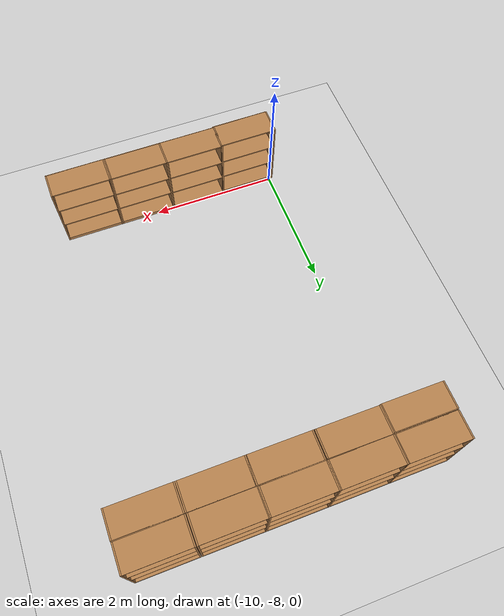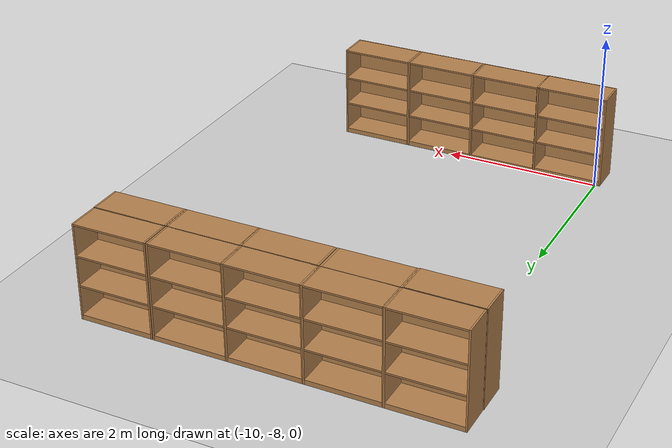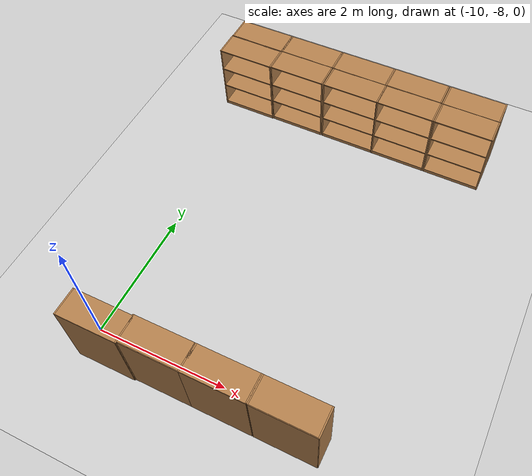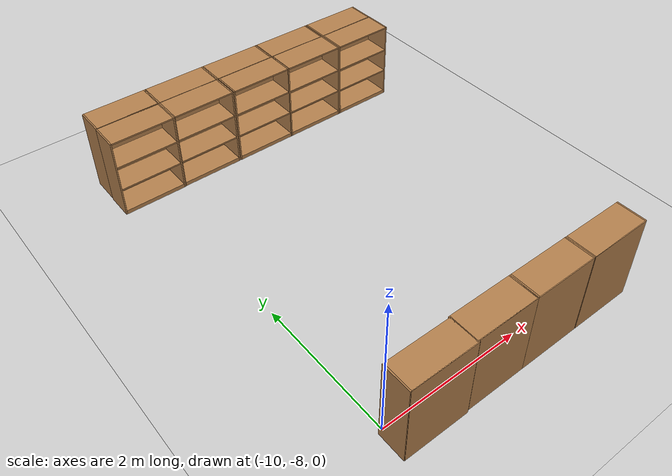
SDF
<sdf version="1.7">
 <world name="default">
  <model name="ground_plane">
   <static>1</static>
   <link name="link">
    <collision name="collision">
     <geometry><plane><normal>0 0 1</normal><size>100 100</size></plane></geometry>
     <surface><friction><ode><mu>100</mu><mu2>50</mu2></ode></friction></surface>
    </collision>
    <visual name="visual">
     <cast_shadows>0</cast_shadows>
     <geometry><plane><normal>0 0 1</normal><size>100 100</size></plane></geometry>
     <material>
      <script><uri>file://media/materials/scripts/gazebo.material</uri><name>Gazebo/Grey</name></script>
     </material>
    </visual>
   </link>
  </model>
  <model name="bookshelf_clone_0_clone_0_clone_clone_clone_clone_clone_1_clone_clone_clone_clone">
   <static>1</static>
   <link name="link">
    <inertial><mass>1</mass></inertial>
    <collision name="back">
     <pose>0 0.005 0.6 0 -0 0</pose>
     <geometry><box><size>0.9 0.01 1.2</size></box></geometry>
    </collision>
    <visual name="visual1">
     <pose>0 0.005 0.6 0 -0 0</pose>
     <geometry><box><size>0.9 0.01 1.2</size></box></geometry>
     <material>
      <script><uri>file://media/materials/scripts/gazebo.material</uri><name>Gazebo/Wood</name></script>
     </material>
    </visual>
    <collision name="left_side">
     <pose>0.45 -0.195 0.6 0 -0 0</pose>
     <geometry><box><size>0.02 0.4 1.2</size></box></geometry>
    </collision>
    <visual name="visual2">
     <pose>0.45 -0.195 0.6 0 -0 0</pose>
     <geometry><box><size>0.02 0.4 1.2</size></box></geometry>
     <material>
      <script><uri>file://media/materials/scripts/gazebo.material</uri><name>Gazebo/Wood</name></script>
     </material>
    </visual>
    <collision name="right_side">
     <pose>-0.45 -0.195 0.6 0 -0 0</pose>
     <geometry><box><size>0.02 0.4 1.2</size></box></geometry>
    </collision>
    <visual name="visual3">
     <pose>-0.45 -0.195 0.6 0 -0 0</pose>
     <geometry><box><size>0.02 0.4 1.2</size></box></geometry>
     <material>
      <script><uri>file://media/materials/scripts/gazebo.material</uri><name>Gazebo/Wood</name></script>
     </material>
    </visual>
    <collision name="bottom">
     <pose>0 -0.195 0.03 0 -0 0</pose>
     <geometry><box><size>0.88 0.4 0.06</size></box></geometry>
    </collision>
    <visual name="visual4">
     <pose>0 -0.195 0.03 0 -0 0</pose>
     <geometry><box><size>0.88 0.4 0.06</size></box></geometry>
     <material>
      <script><uri>file://media/materials/scripts/gazebo.material</uri><name>Gazebo/Wood</name></script>
     </material>
    </visual>
    <collision name="top">
     <pose>0 -0.195 1.19 0 -0 0</pose>
     <geometry><box><size>0.88 0.4 0.02</size></box></geometry>
    </collision>
    <visual name="visual5">
     <pose>0 -0.195 1.19 0 -0 0</pose>
     <geometry><box><size>0.88 0.4 0.02</size></box></geometry>
     <material>
      <script><uri>file://media/materials/scripts/gazebo.material</uri><name>Gazebo/Wood</name></script>
     </material>
    </visual>
    <collision name="low_shelf">
     <pose>0 -0.195 0.43 0 -0 0</pose>
     <geometry><box><size>0.88 0.4 0.02</size></box></geometry>
    </collision>
    <visual name="visual6">
     <pose>0 -0.195 0.43 0 -0 0</pose>
     <geometry><box><size>0.88 0.4 0.02</size></box></geometry>
     <material>
      <script><uri>file://media/materials/scripts/gazebo.material</uri><name>Gazebo/Wood</name></script>
     </material>
    </visual>
    <collision name="high_shelf">
     <pose>0 -0.195 0.8 0 -0 0</pose>
     <geometry><box><size>0.88 0.4 0.02</size></box></geometry>
    </collision>
    <visual name="visual7">
     <pose>0 -0.195 0.8 0 -0 0</pose>
     <geometry><box><size>0.88 0.4 0.02</size></box></geometry>
     <material>
      <script><uri>file://media/materials/scripts/gazebo.material</uri><name>Gazebo/Wood</name></script>
     </material>
    </visual>
   </link>
   <pose>-6.41849 -2.94994 0.004614 0 0 -3.14107</pose>
  </model>
  <model name="bookshelf_clone_0_clone_0_clone_clone_clone_clone_clone_1_clone_clone_clone_clone_clone">
   <static>1</static>
   <link name="link">
    <inertial><mass>1</mass></inertial>
    <collision name="back">
     <pose>0 0.005 0.6 0 -0 0</pose>
     <geometry><box><size>0.9 0.01 1.2</size></box></geometry>
    </collision>
    <visual name="visual1">
     <pose>0 0.005 0.6 0 -0 0</pose>
     <geometry><box><size>0.9 0.01 1.2</size></box></geometry>
     <material>
      <script><uri>file://media/materials/scripts/gazebo.material</uri><name>Gazebo/Wood</name></script>
     </material>
    </visual>
    <collision name="left_side">
     <pose>0.45 -0.195 0.6 0 -0 0</pose>
     <geometry><box><size>0.02 0.4 1.2</size></box></geometry>
    </collision>
    <visual name="visual2">
     <pose>0.45 -0.195 0.6 0 -0 0</pose>
     <geometry><box><size>0.02 0.4 1.2</size></box></geometry>
     <material>
      <script><uri>file://media/materials/scripts/gazebo.material</uri><name>Gazebo/Wood</name></script>
     </material>
    </visual>
    <collision name="right_side">
     <pose>-0.45 -0.195 0.6 0 -0 0</pose>
     <geometry><box><size>0.02 0.4 1.2</size></box></geometry>
    </collision>
    <visual name="visual3">
     <pose>-0.45 -0.195 0.6 0 -0 0</pose>
     <geometry><box><size>0.02 0.4 1.2</size></box></geometry>
     <material>
      <script><uri>file://media/materials/scripts/gazebo.material</uri><name>Gazebo/Wood</name></script>
     </material>
    </visual>
    <collision name="bottom">
     <pose>0 -0.195 0.03 0 -0 0</pose>
     <geometry><box><size>0.88 0.4 0.06</size></box></geometry>
    </collision>
    <visual name="visual4">
     <pose>0 -0.195 0.03 0 -0 0</pose>
     <geometry><box><size>0.88 0.4 0.06</size></box></geometry>
     <material>
      <script><uri>file://media/materials/scripts/gazebo.material</uri><name>Gazebo/Wood</name></script>
     </material>
    </visual>
    <collision name="top">
     <pose>0 -0.195 1.19 0 -0 0</pose>
     <geometry><box><size>0.88 0.4 0.02</size></box></geometry>
    </collision>
    <visual name="visual5">
     <pose>0 -0.195 1.19 0 -0 0</pose>
     <geometry><box><size>0.88 0.4 0.02</size></box></geometry>
     <material>
      <script><uri>file://media/materials/scripts/gazebo.material</uri><name>Gazebo/Wood</name></script>
     </material>
    </visual>
    <collision name="low_shelf">
     <pose>0 -0.195 0.43 0 -0 0</pose>
     <geometry><box><size>0.88 0.4 0.02</size></box></geometry>
    </collision>
    <visual name="visual6">
     <pose>0 -0.195 0.43 0 -0 0</pose>
     <geometry><box><size>0.88 0.4 0.02</size></box></geometry>
     <material>
      <script><uri>file://media/materials/scripts/gazebo.material</uri><name>Gazebo/Wood</name></script>
     </material>
    </visual>
    <collision name="high_shelf">
     <pose>0 -0.195 0.8 0 -0 0</pose>
     <geometry><box><size>0.88 0.4 0.02</size></box></geometry>
    </collision>
    <visual name="visual7">
     <pose>0 -0.195 0.8 0 -0 0</pose>
     <geometry><box><size>0.88 0.4 0.02</size></box></geometry>
     <material>
      <script><uri>file://media/materials/scripts/gazebo.material</uri><name>Gazebo/Wood</name></script>
     </material>
    </visual>
   </link>
   <pose>-7.34723 -2.94994 0.004614 0 0 -3.14107</pose>
  </model>
  <model name="bookshelf_clone_0_clone_0_clone_clone_clone_clone_clone_1_clone_clone_clone_clone_clone_clone">
   <static>1</static>
   <link name="link">
    <inertial><mass>1</mass></inertial>
    <collision name="back">
     <pose>0 0.005 0.6 0 -0 0</pose>
     <geometry><box><size>0.9 0.01 1.2</size></box></geometry>
    </collision>
    <visual name="visual1">
     <pose>0 0.005 0.6 0 -0 0</pose>
     <geometry><box><size>0.9 0.01 1.2</size></box></geometry>
     <material>
      <script><uri>file://media/materials/scripts/gazebo.material</uri><name>Gazebo/Wood</name></script>
     </material>
    </visual>
    <collision name="left_side">
     <pose>0.45 -0.195 0.6 0 -0 0</pose>
     <geometry><box><size>0.02 0.4 1.2</size></box></geometry>
    </collision>
    <visual name="visual2">
     <pose>0.45 -0.195 0.6 0 -0 0</pose>
     <geometry><box><size>0.02 0.4 1.2</size></box></geometry>
     <material>
      <script><uri>file://media/materials/scripts/gazebo.material</uri><name>Gazebo/Wood</name></script>
     </material>
    </visual>
    <collision name="right_side">
     <pose>-0.45 -0.195 0.6 0 -0 0</pose>
     <geometry><box><size>0.02 0.4 1.2</size></box></geometry>
    </collision>
    <visual name="visual3">
     <pose>-0.45 -0.195 0.6 0 -0 0</pose>
     <geometry><box><size>0.02 0.4 1.2</size></box></geometry>
     <material>
      <script><uri>file://media/materials/scripts/gazebo.material</uri><name>Gazebo/Wood</name></script>
     </material>
    </visual>
    <collision name="bottom">
     <pose>0 -0.195 0.03 0 -0 0</pose>
     <geometry><box><size>0.88 0.4 0.06</size></box></geometry>
    </collision>
    <visual name="visual4">
     <pose>0 -0.195 0.03 0 -0 0</pose>
     <geometry><box><size>0.88 0.4 0.06</size></box></geometry>
     <material>
      <script><uri>file://media/materials/scripts/gazebo.material</uri><name>Gazebo/Wood</name></script>
     </material>
    </visual>
    <collision name="top">
     <pose>0 -0.195 1.19 0 -0 0</pose>
     <geometry><box><size>0.88 0.4 0.02</size></box></geometry>
    </collision>
    <visual name="visual5">
     <pose>0 -0.195 1.19 0 -0 0</pose>
     <geometry><box><size>0.88 0.4 0.02</size></box></geometry>
     <material>
      <script><uri>file://media/materials/scripts/gazebo.material</uri><name>Gazebo/Wood</name></script>
     </material>
    </visual>
    <collision name="low_shelf">
     <pose>0 -0.195 0.43 0 -0 0</pose>
     <geometry><box><size>0.88 0.4 0.02</size></box></geometry>
    </collision>
    <visual name="visual6">
     <pose>0 -0.195 0.43 0 -0 0</pose>
     <geometry><box><size>0.88 0.4 0.02</size></box></geometry>
     <material>
      <script><uri>file://media/materials/scripts/gazebo.material</uri><name>Gazebo/Wood</name></script>
     </material>
    </visual>
    <collision name="high_shelf">
     <pose>0 -0.195 0.8 0 -0 0</pose>
     <geometry><box><size>0.88 0.4 0.02</size></box></geometry>
    </collision>
    <visual name="visual7">
     <pose>0 -0.195 0.8 0 -0 0</pose>
     <geometry><box><size>0.88 0.4 0.02</size></box></geometry>
     <material>
      <script><uri>file://media/materials/scripts/gazebo.material</uri><name>Gazebo/Wood</name></script>
     </material>
    </visual>
   </link>
   <pose>-8.26036 -2.94994 0.004614 0 0 -3.14107</pose>
  </model>
  <model name="bookshelf_clone_0_clone_0_clone_clone_clone_clone_clone_1_clone_clone_clone_clone_clone_clone_clone">
   <static>1</static>
   <link name="link">
    <inertial><mass>1</mass></inertial>
    <collision name="back">
     <pose>0 0.005 0.6 0 -0 0</pose>
     <geometry><box><size>0.9 0.01 1.2</size></box></geometry>
    </collision>
    <visual name="visual1">
     <pose>0 0.005 0.6 0 -0 0</pose>
     <geometry><box><size>0.9 0.01 1.2</size></box></geometry>
     <material>
      <script><uri>file://media/materials/scripts/gazebo.material</uri><name>Gazebo/Wood</name></script>
     </material>
    </visual>
    <collision name="left_side">
     <pose>0.45 -0.195 0.6 0 -0 0</pose>
     <geometry><box><size>0.02 0.4 1.2</size></box></geometry>
    </collision>
    <visual name="visual2">
     <pose>0.45 -0.195 0.6 0 -0 0</pose>
     <geometry><box><size>0.02 0.4 1.2</size></box></geometry>
     <material>
      <script><uri>file://media/materials/scripts/gazebo.material</uri><name>Gazebo/Wood</name></script>
     </material>
    </visual>
    <collision name="right_side">
     <pose>-0.45 -0.195 0.6 0 -0 0</pose>
     <geometry><box><size>0.02 0.4 1.2</size></box></geometry>
    </collision>
    <visual name="visual3">
     <pose>-0.45 -0.195 0.6 0 -0 0</pose>
     <geometry><box><size>0.02 0.4 1.2</size></box></geometry>
     <material>
      <script><uri>file://media/materials/scripts/gazebo.material</uri><name>Gazebo/Wood</name></script>
     </material>
    </visual>
    <collision name="bottom">
     <pose>0 -0.195 0.03 0 -0 0</pose>
     <geometry><box><size>0.88 0.4 0.06</size></box></geometry>
    </collision>
    <visual name="visual4">
     <pose>0 -0.195 0.03 0 -0 0</pose>
     <geometry><box><size>0.88 0.4 0.06</size></box></geometry>
     <material>
      <script><uri>file://media/materials/scripts/gazebo.material</uri><name>Gazebo/Wood</name></script>
     </material>
    </visual>
    <collision name="top">
     <pose>0 -0.195 1.19 0 -0 0</pose>
     <geometry><box><size>0.88 0.4 0.02</size></box></geometry>
    </collision>
    <visual name="visual5">
     <pose>0 -0.195 1.19 0 -0 0</pose>
     <geometry><box><size>0.88 0.4 0.02</size></box></geometry>
     <material>
      <script><uri>file://media/materials/scripts/gazebo.material</uri><name>Gazebo/Wood</name></script>
     </material>
    </visual>
    <collision name="low_shelf">
     <pose>0 -0.195 0.43 0 -0 0</pose>
     <geometry><box><size>0.88 0.4 0.02</size></box></geometry>
    </collision>
    <visual name="visual6">
     <pose>0 -0.195 0.43 0 -0 0</pose>
     <geometry><box><size>0.88 0.4 0.02</size></box></geometry>
     <material>
      <script><uri>file://media/materials/scripts/gazebo.material</uri><name>Gazebo/Wood</name></script>
     </material>
    </visual>
    <collision name="high_shelf">
     <pose>0 -0.195 0.8 0 -0 0</pose>
     <geometry><box><size>0.88 0.4 0.02</size></box></geometry>
    </collision>
    <visual name="visual7">
     <pose>0 -0.195 0.8 0 -0 0</pose>
     <geometry><box><size>0.88 0.4 0.02</size></box></geometry>
     <material>
      <script><uri>file://media/materials/scripts/gazebo.material</uri><name>Gazebo/Wood</name></script>
     </material>
    </visual>
   </link>
   <pose>-9.17466 -2.94994 0.004614 0 0 -3.14107</pose>
  </model>
  <model name="bookshelf_clone_clone_clone_0">
   <static>1</static>
   <link name="link">
    <inertial><mass>1</mass></inertial>
    <collision name="back">
     <pose>0 0.005 0.6 0 -0 0</pose>
     <geometry><box><size>0.9 0.01 1.2</size></box></geometry>
    </collision>
    <visual name="visual1">
     <pose>0 0.005 0.6 0 -0 0</pose>
     <geometry><box><size>0.9 0.01 1.2</size></box></geometry>
     <material>
      <script><uri>file://media/materials/scripts/gazebo.material</uri><name>Gazebo/Wood</name></script>
     </material>
    </visual>
    <collision name="left_side">
     <pose>0.45 -0.195 0.6 0 -0 0</pose>
     <geometry><box><size>0.02 0.4 1.2</size></box></geometry>
    </collision>
    <visual name="visual2">
     <pose>0.45 -0.195 0.6 0 -0 0</pose>
     <geometry><box><size>0.02 0.4 1.2</size></box></geometry>
     <material>
      <script><uri>file://media/materials/scripts/gazebo.material</uri><name>Gazebo/Wood</name></script>
     </material>
    </visual>
    <collision name="right_side">
     <pose>-0.45 -0.195 0.6 0 -0 0</pose>
     <geometry><box><size>0.02 0.4 1.2</size></box></geometry>
    </collision>
    <visual name="visual3">
     <pose>-0.45 -0.195 0.6 0 -0 0</pose>
     <geometry><box><size>0.02 0.4 1.2</size></box></geometry>
     <material>
      <script><uri>file://media/materials/scripts/gazebo.material</uri><name>Gazebo/Wood</name></script>
     </material>
    </visual>
    <collision name="bottom">
     <pose>0 -0.195 0.03 0 -0 0</pose>
     <geometry><box><size>0.88 0.4 0.06</size></box></geometry>
    </collision>
    <visual name="visual4">
     <pose>0 -0.195 0.03 0 -0 0</pose>
     <geometry><box><size>0.88 0.4 0.06</size></box></geometry>
     <material>
      <script><uri>file://media/materials/scripts/gazebo.material</uri><name>Gazebo/Wood</name></script>
     </material>
    </visual>
    <collision name="top">
     <pose>0 -0.195 1.19 0 -0 0</pose>
     <geometry><box><size>0.88 0.4 0.02</size></box></geometry>
    </collision>
    <visual name="visual5">
     <pose>0 -0.195 1.19 0 -0 0</pose>
     <geometry><box><size>0.88 0.4 0.02</size></box></geometry>
     <material>
      <script><uri>file://media/materials/scripts/gazebo.material</uri><name>Gazebo/Wood</name></script>
     </material>
    </visual>
    <collision name="low_shelf">
     <pose>0 -0.195 0.43 0 -0 0</pose>
     <geometry><box><size>0.88 0.4 0.02</size></box></geometry>
    </collision>
    <visual name="visual6">
     <pose>0 -0.195 0.43 0 -0 0</pose>
     <geometry><box><size>0.88 0.4 0.02</size></box></geometry>
     <material>
      <script><uri>file://media/materials/scripts/gazebo.material</uri><name>Gazebo/Wood</name></script>
     </material>
    </visual>
    <collision name="high_shelf">
     <pose>0 -0.195 0.8 0 -0 0</pose>
     <geometry><box><size>0.88 0.4 0.02</size></box></geometry>
    </collision>
    <visual name="visual7">
     <pose>0 -0.195 0.8 0 -0 0</pose>
     <geometry><box><size>0.88 0.4 0.02</size></box></geometry>
     <material>
      <script><uri>file://media/materials/scripts/gazebo.material</uri><name>Gazebo/Wood</name></script>
     </material>
    </visual>
   </link>
   <pose>-6.9119 -8.39134 0 0 0 -3.14107</pose>
  </model>
  <model name="bookshelf_clone_clone_clone_1">
   <static>1</static>
   <link name="link">
    <inertial><mass>1</mass></inertial>
    <collision name="back">
     <pose>0 0.005 0.6 0 -0 0</pose>
     <geometry><box><size>0.9 0.01 1.2</size></box></geometry>
    </collision>
    <visual name="visual1">
     <pose>0 0.005 0.6 0 -0 0</pose>
     <geometry><box><size>0.9 0.01 1.2</size></box></geometry>
     <material>
      <script><uri>file://media/materials/scripts/gazebo.material</uri><name>Gazebo/Wood</name></script>
     </material>
    </visual>
    <collision name="left_side">
     <pose>0.45 -0.195 0.6 0 -0 0</pose>
     <geometry><box><size>0.02 0.4 1.2</size></box></geometry>
    </collision>
    <visual name="visual2">
     <pose>0.45 -0.195 0.6 0 -0 0</pose>
     <geometry><box><size>0.02 0.4 1.2</size></box></geometry>
     <material>
      <script><uri>file://media/materials/scripts/gazebo.material</uri><name>Gazebo/Wood</name></script>
     </material>
    </visual>
    <collision name="right_side">
     <pose>-0.45 -0.195 0.6 0 -0 0</pose>
     <geometry><box><size>0.02 0.4 1.2</size></box></geometry>
    </collision>
    <visual name="visual3">
     <pose>-0.45 -0.195 0.6 0 -0 0</pose>
     <geometry><box><size>0.02 0.4 1.2</size></box></geometry>
     <material>
      <script><uri>file://media/materials/scripts/gazebo.material</uri><name>Gazebo/Wood</name></script>
     </material>
    </visual>
    <collision name="bottom">
     <pose>0 -0.195 0.03 0 -0 0</pose>
     <geometry><box><size>0.88 0.4 0.06</size></box></geometry>
    </collision>
    <visual name="visual4">
     <pose>0 -0.195 0.03 0 -0 0</pose>
     <geometry><box><size>0.88 0.4 0.06</size></box></geometry>
     <material>
      <script><uri>file://media/materials/scripts/gazebo.material</uri><name>Gazebo/Wood</name></script>
     </material>
    </visual>
    <collision name="top">
     <pose>0 -0.195 1.19 0 -0 0</pose>
     <geometry><box><size>0.88 0.4 0.02</size></box></geometry>
    </collision>
    <visual name="visual5">
     <pose>0 -0.195 1.19 0 -0 0</pose>
     <geometry><box><size>0.88 0.4 0.02</size></box></geometry>
     <material>
      <script><uri>file://media/materials/scripts/gazebo.material</uri><name>Gazebo/Wood</name></script>
     </material>
    </visual>
    <collision name="low_shelf">
     <pose>0 -0.195 0.43 0 -0 0</pose>
     <geometry><box><size>0.88 0.4 0.02</size></box></geometry>
    </collision>
    <visual name="visual6">
     <pose>0 -0.195 0.43 0 -0 0</pose>
     <geometry><box><size>0.88 0.4 0.02</size></box></geometry>
     <material>
      <script><uri>file://media/materials/scripts/gazebo.material</uri><name>Gazebo/Wood</name></script>
     </material>
    </visual>
    <collision name="high_shelf">
     <pose>0 -0.195 0.8 0 -0 0</pose>
     <geometry><box><size>0.88 0.4 0.02</size></box></geometry>
    </collision>
    <visual name="visual7">
     <pose>0 -0.195 0.8 0 -0 0</pose>
     <geometry><box><size>0.88 0.4 0.02</size></box></geometry>
     <material>
      <script><uri>file://media/materials/scripts/gazebo.material</uri><name>Gazebo/Wood</name></script>
     </material>
    </visual>
   </link>
   <pose>-7.82824 -8.39134 0 0 0 -3.14107</pose>
  </model>
  <model name="bookshelf_clone_clone_clone_2">
   <static>1</static>
   <link name="link">
    <inertial><mass>1</mass></inertial>
    <collision name="back">
     <pose>0 0.005 0.6 0 -0 0</pose>
     <geometry><box><size>0.9 0.01 1.2</size></box></geometry>
    </collision>
    <visual name="visual1">
     <pose>0 0.005 0.6 0 -0 0</pose>
     <geometry><box><size>0.9 0.01 1.2</size></box></geometry>
     <material>
      <script><uri>file://media/materials/scripts/gazebo.material</uri><name>Gazebo/Wood</name></script>
     </material>
    </visual>
    <collision name="left_side">
     <pose>0.45 -0.195 0.6 0 -0 0</pose>
     <geometry><box><size>0.02 0.4 1.2</size></box></geometry>
    </collision>
    <visual name="visual2">
     <pose>0.45 -0.195 0.6 0 -0 0</pose>
     <geometry><box><size>0.02 0.4 1.2</size></box></geometry>
     <material>
      <script><uri>file://media/materials/scripts/gazebo.material</uri><name>Gazebo/Wood</name></script>
     </material>
    </visual>
    <collision name="right_side">
     <pose>-0.45 -0.195 0.6 0 -0 0</pose>
     <geometry><box><size>0.02 0.4 1.2</size></box></geometry>
    </collision>
    <visual name="visual3">
     <pose>-0.45 -0.195 0.6 0 -0 0</pose>
     <geometry><box><size>0.02 0.4 1.2</size></box></geometry>
     <material>
      <script><uri>file://media/materials/scripts/gazebo.material</uri><name>Gazebo/Wood</name></script>
     </material>
    </visual>
    <collision name="bottom">
     <pose>0 -0.195 0.03 0 -0 0</pose>
     <geometry><box><size>0.88 0.4 0.06</size></box></geometry>
    </collision>
    <visual name="visual4">
     <pose>0 -0.195 0.03 0 -0 0</pose>
     <geometry><box><size>0.88 0.4 0.06</size></box></geometry>
     <material>
      <script><uri>file://media/materials/scripts/gazebo.material</uri><name>Gazebo/Wood</name></script>
     </material>
    </visual>
    <collision name="top">
     <pose>0 -0.195 1.19 0 -0 0</pose>
     <geometry><box><size>0.88 0.4 0.02</size></box></geometry>
    </collision>
    <visual name="visual5">
     <pose>0 -0.195 1.19 0 -0 0</pose>
     <geometry><box><size>0.88 0.4 0.02</size></box></geometry>
     <material>
      <script><uri>file://media/materials/scripts/gazebo.material</uri><name>Gazebo/Wood</name></script>
     </material>
    </visual>
    <collision name="low_shelf">
     <pose>0 -0.195 0.43 0 -0 0</pose>
     <geometry><box><size>0.88 0.4 0.02</size></box></geometry>
    </collision>
    <visual name="visual6">
     <pose>0 -0.195 0.43 0 -0 0</pose>
     <geometry><box><size>0.88 0.4 0.02</size></box></geometry>
     <material>
      <script><uri>file://media/materials/scripts/gazebo.material</uri><name>Gazebo/Wood</name></script>
     </material>
    </visual>
    <collision name="high_shelf">
     <pose>0 -0.195 0.8 0 -0 0</pose>
     <geometry><box><size>0.88 0.4 0.02</size></box></geometry>
    </collision>
    <visual name="visual7">
     <pose>0 -0.195 0.8 0 -0 0</pose>
     <geometry><box><size>0.88 0.4 0.02</size></box></geometry>
     <material>
      <script><uri>file://media/materials/scripts/gazebo.material</uri><name>Gazebo/Wood</name></script>
     </material>
    </visual>
   </link>
   <pose>-8.71324 -8.39134 0 0 0 -3.14107</pose>
  </model>
  <model name="bookshelf_clone_0_clone_0_clone_clone_clone_clone_clone_1_clone_clone_clone_clone_clone_clone_clone_clone_clone_clone_0_clone_clone_clone_clone_clone_0_clone_0_clone_clone_2">
   <static>1</static>
   <link name="link">
    <inertial><mass>1</mass></inertial>
    <collision name="back">
     <pose>0 0.005 0.6 0 -0 0</pose>
     <geometry><box><size>0.9 0.01 1.2</size></box></geometry>
    </collision>
    <visual name="visual1">
     <pose>0 0.005 0.6 0 -0 0</pose>
     <geometry><box><size>0.9 0.01 1.2</size></box></geometry>
     <material>
      <script><uri>file://media/materials/scripts/gazebo.material</uri><name>Gazebo/Wood</name></script>
     </material>
    </visual>
    <collision name="left_side">
     <pose>0.45 -0.195 0.6 0 -0 0</pose>
     <geometry><box><size>0.02 0.4 1.2</size></box></geometry>
    </collision>
    <visual name="visual2">
     <pose>0.45 -0.195 0.6 0 -0 0</pose>
     <geometry><box><size>0.02 0.4 1.2</size></box></geometry>
     <material>
      <script><uri>file://media/materials/scripts/gazebo.material</uri><name>Gazebo/Wood</name></script>
     </material>
    </visual>
    <collision name="right_side">
     <pose>-0.45 -0.195 0.6 0 -0 0</pose>
     <geometry><box><size>0.02 0.4 1.2</size></box></geometry>
    </collision>
    <visual name="visual3">
     <pose>-0.45 -0.195 0.6 0 -0 0</pose>
     <geometry><box><size>0.02 0.4 1.2</size></box></geometry>
     <material>
      <script><uri>file://media/materials/scripts/gazebo.material</uri><name>Gazebo/Wood</name></script>
     </material>
    </visual>
    <collision name="bottom">
     <pose>0 -0.195 0.03 0 -0 0</pose>
     <geometry><box><size>0.88 0.4 0.06</size></box></geometry>
    </collision>
    <visual name="visual4">
     <pose>0 -0.195 0.03 0 -0 0</pose>
     <geometry><box><size>0.88 0.4 0.06</size></box></geometry>
     <material>
      <script><uri>file://media/materials/scripts/gazebo.material</uri><name>Gazebo/Wood</name></script>
     </material>
    </visual>
    <collision name="top">
     <pose>0 -0.195 1.19 0 -0 0</pose>
     <geometry><box><size>0.88 0.4 0.02</size></box></geometry>
    </collision>
    <visual name="visual5">
     <pose>0 -0.195 1.19 0 -0 0</pose>
     <geometry><box><size>0.88 0.4 0.02</size></box></geometry>
     <material>
      <script><uri>file://media/materials/scripts/gazebo.material</uri><name>Gazebo/Wood</name></script>
     </material>
    </visual>
    <collision name="low_shelf">
     <pose>0 -0.195 0.43 0 -0 0</pose>
     <geometry><box><size>0.88 0.4 0.02</size></box></geometry>
    </collision>
    <visual name="visual6">
     <pose>0 -0.195 0.43 0 -0 0</pose>
     <geometry><box><size>0.88 0.4 0.02</size></box></geometry>
     <material>
      <script><uri>file://media/materials/scripts/gazebo.material</uri><name>Gazebo/Wood</name></script>
     </material>
    </visual>
    <collision name="high_shelf">
     <pose>0 -0.195 0.8 0 -0 0</pose>
     <geometry><box><size>0.88 0.4 0.02</size></box></geometry>
    </collision>
    <visual name="visual7">
     <pose>0 -0.195 0.8 0 -0 0</pose>
     <geometry><box><size>0.88 0.4 0.02</size></box></geometry>
     <material>
      <script><uri>file://media/materials/scripts/gazebo.material</uri><name>Gazebo/Wood</name></script>
     </material>
    </visual>
   </link>
   <pose>-6.41456 -2.966 0.004614 0 -0 0.000147</pose>
  </model>
  <model name="bookshelf_clone_0_clone_0_clone_clone_clone_clone_clone_1_clone_clone_clone_clone_clone_clone_clone_clone_clone_clone_0_clone_clone_clone_clone_clone_0_clone_0_clone_clone_3">
   <static>1</static>
   <link name="link">
    <inertial><mass>1</mass></inertial>
    <collision name="back">
     <pose>0 0.005 0.6 0 -0 0</pose>
     <geometry><box><size>0.9 0.01 1.2</size></box></geometry>
    </collision>
    <visual name="visual1">
     <pose>0 0.005 0.6 0 -0 0</pose>
     <geometry><box><size>0.9 0.01 1.2</size></box></geometry>
     <material>
      <script><uri>file://media/materials/scripts/gazebo.material</uri><name>Gazebo/Wood</name></script>
     </material>
    </visual>
    <collision name="left_side">
     <pose>0.45 -0.195 0.6 0 -0 0</pose>
     <geometry><box><size>0.02 0.4 1.2</size></box></geometry>
    </collision>
    <visual name="visual2">
     <pose>0.45 -0.195 0.6 0 -0 0</pose>
     <geometry><box><size>0.02 0.4 1.2</size></box></geometry>
     <material>
      <script><uri>file://media/materials/scripts/gazebo.material</uri><name>Gazebo/Wood</name></script>
     </material>
    </visual>
    <collision name="right_side">
     <pose>-0.45 -0.195 0.6 0 -0 0</pose>
     <geometry><box><size>0.02 0.4 1.2</size></box></geometry>
    </collision>
    <visual name="visual3">
     <pose>-0.45 -0.195 0.6 0 -0 0</pose>
     <geometry><box><size>0.02 0.4 1.2</size></box></geometry>
     <material>
      <script><uri>file://media/materials/scripts/gazebo.material</uri><name>Gazebo/Wood</name></script>
     </material>
    </visual>
    <collision name="bottom">
     <pose>0 -0.195 0.03 0 -0 0</pose>
     <geometry><box><size>0.88 0.4 0.06</size></box></geometry>
    </collision>
    <visual name="visual4">
     <pose>0 -0.195 0.03 0 -0 0</pose>
     <geometry><box><size>0.88 0.4 0.06</size></box></geometry>
     <material>
      <script><uri>file://media/materials/scripts/gazebo.material</uri><name>Gazebo/Wood</name></script>
     </material>
    </visual>
    <collision name="top">
     <pose>0 -0.195 1.19 0 -0 0</pose>
     <geometry><box><size>0.88 0.4 0.02</size></box></geometry>
    </collision>
    <visual name="visual5">
     <pose>0 -0.195 1.19 0 -0 0</pose>
     <geometry><box><size>0.88 0.4 0.02</size></box></geometry>
     <material>
      <script><uri>file://media/materials/scripts/gazebo.material</uri><name>Gazebo/Wood</name></script>
     </material>
    </visual>
    <collision name="low_shelf">
     <pose>0 -0.195 0.43 0 -0 0</pose>
     <geometry><box><size>0.88 0.4 0.02</size></box></geometry>
    </collision>
    <visual name="visual6">
     <pose>0 -0.195 0.43 0 -0 0</pose>
     <geometry><box><size>0.88 0.4 0.02</size></box></geometry>
     <material>
      <script><uri>file://media/materials/scripts/gazebo.material</uri><name>Gazebo/Wood</name></script>
     </material>
    </visual>
    <collision name="high_shelf">
     <pose>0 -0.195 0.8 0 -0 0</pose>
     <geometry><box><size>0.88 0.4 0.02</size></box></geometry>
    </collision>
    <visual name="visual7">
     <pose>0 -0.195 0.8 0 -0 0</pose>
     <geometry><box><size>0.88 0.4 0.02</size></box></geometry>
     <material>
      <script><uri>file://media/materials/scripts/gazebo.material</uri><name>Gazebo/Wood</name></script>
     </material>
    </visual>
   </link>
   <pose>-7.33766 -2.966 0.004614 0 -0 0.000147</pose>
  </model>
  <model name="bookshelf_clone_0_clone_0_clone_clone_clone_clone_clone_1_clone_clone_clone_clone_clone_clone_clone_clone_clone_clone_0_clone_clone_clone_clone_clone_0_clone_0_clone_clone_4">
   <static>1</static>
   <link name="link">
    <inertial><mass>1</mass></inertial>
    <collision name="back">
     <pose>0 0.005 0.6 0 -0 0</pose>
     <geometry><box><size>0.9 0.01 1.2</size></box></geometry>
    </collision>
    <visual name="visual1">
     <pose>0 0.005 0.6 0 -0 0</pose>
     <geometry><box><size>0.9 0.01 1.2</size></box></geometry>
     <material>
      <script><uri>file://media/materials/scripts/gazebo.material</uri><name>Gazebo/Wood</name></script>
     </material>
    </visual>
    <collision name="left_side">
     <pose>0.45 -0.195 0.6 0 -0 0</pose>
     <geometry><box><size>0.02 0.4 1.2</size></box></geometry>
    </collision>
    <visual name="visual2">
     <pose>0.45 -0.195 0.6 0 -0 0</pose>
     <geometry><box><size>0.02 0.4 1.2</size></box></geometry>
     <material>
      <script><uri>file://media/materials/scripts/gazebo.material</uri><name>Gazebo/Wood</name></script>
     </material>
    </visual>
    <collision name="right_side">
     <pose>-0.45 -0.195 0.6 0 -0 0</pose>
     <geometry><box><size>0.02 0.4 1.2</size></box></geometry>
    </collision>
    <visual name="visual3">
     <pose>-0.45 -0.195 0.6 0 -0 0</pose>
     <geometry><box><size>0.02 0.4 1.2</size></box></geometry>
     <material>
      <script><uri>file://media/materials/scripts/gazebo.material</uri><name>Gazebo/Wood</name></script>
     </material>
    </visual>
    <collision name="bottom">
     <pose>0 -0.195 0.03 0 -0 0</pose>
     <geometry><box><size>0.88 0.4 0.06</size></box></geometry>
    </collision>
    <visual name="visual4">
     <pose>0 -0.195 0.03 0 -0 0</pose>
     <geometry><box><size>0.88 0.4 0.06</size></box></geometry>
     <material>
      <script><uri>file://media/materials/scripts/gazebo.material</uri><name>Gazebo/Wood</name></script>
     </material>
    </visual>
    <collision name="top">
     <pose>0 -0.195 1.19 0 -0 0</pose>
     <geometry><box><size>0.88 0.4 0.02</size></box></geometry>
    </collision>
    <visual name="visual5">
     <pose>0 -0.195 1.19 0 -0 0</pose>
     <geometry><box><size>0.88 0.4 0.02</size></box></geometry>
     <material>
      <script><uri>file://media/materials/scripts/gazebo.material</uri><name>Gazebo/Wood</name></script>
     </material>
    </visual>
    <collision name="low_shelf">
     <pose>0 -0.195 0.43 0 -0 0</pose>
     <geometry><box><size>0.88 0.4 0.02</size></box></geometry>
    </collision>
    <visual name="visual6">
     <pose>0 -0.195 0.43 0 -0 0</pose>
     <geometry><box><size>0.88 0.4 0.02</size></box></geometry>
     <material>
      <script><uri>file://media/materials/scripts/gazebo.material</uri><name>Gazebo/Wood</name></script>
     </material>
    </visual>
    <collision name="high_shelf">
     <pose>0 -0.195 0.8 0 -0 0</pose>
     <geometry><box><size>0.88 0.4 0.02</size></box></geometry>
    </collision>
    <visual name="visual7">
     <pose>0 -0.195 0.8 0 -0 0</pose>
     <geometry><box><size>0.88 0.4 0.02</size></box></geometry>
     <material>
      <script><uri>file://media/materials/scripts/gazebo.material</uri><name>Gazebo/Wood</name></script>
     </material>
    </visual>
   </link>
   <pose>-8.24575 -2.966 0.004614 0 -0 0.000147</pose>
  </model>
  <model name="bookshelf_clone_0_clone_0_clone_clone_clone_clone_clone_1_clone_clone_clone_clone_clone_clone_clone_clone_clone_clone_0_clone_clone_clone_clone_clone_0_clone_0_clone_clone_5">
   <static>1</static>
   <link name="link">
    <inertial><mass>1</mass></inertial>
    <collision name="back">
     <pose>0 0.005 0.6 0 -0 0</pose>
     <geometry><box><size>0.9 0.01 1.2</size></box></geometry>
    </collision>
    <visual name="visual1">
     <pose>0 0.005 0.6 0 -0 0</pose>
     <geometry><box><size>0.9 0.01 1.2</size></box></geometry>
     <material>
      <script><uri>file://media/materials/scripts/gazebo.material</uri><name>Gazebo/Wood</name></script>
     </material>
    </visual>
    <collision name="left_side">
     <pose>0.45 -0.195 0.6 0 -0 0</pose>
     <geometry><box><size>0.02 0.4 1.2</size></box></geometry>
    </collision>
    <visual name="visual2">
     <pose>0.45 -0.195 0.6 0 -0 0</pose>
     <geometry><box><size>0.02 0.4 1.2</size></box></geometry>
     <material>
      <script><uri>file://media/materials/scripts/gazebo.material</uri><name>Gazebo/Wood</name></script>
     </material>
    </visual>
    <collision name="right_side">
     <pose>-0.45 -0.195 0.6 0 -0 0</pose>
     <geometry><box><size>0.02 0.4 1.2</size></box></geometry>
    </collision>
    <visual name="visual3">
     <pose>-0.45 -0.195 0.6 0 -0 0</pose>
     <geometry><box><size>0.02 0.4 1.2</size></box></geometry>
     <material>
      <script><uri>file://media/materials/scripts/gazebo.material</uri><name>Gazebo/Wood</name></script>
     </material>
    </visual>
    <collision name="bottom">
     <pose>0 -0.195 0.03 0 -0 0</pose>
     <geometry><box><size>0.88 0.4 0.06</size></box></geometry>
    </collision>
    <visual name="visual4">
     <pose>0 -0.195 0.03 0 -0 0</pose>
     <geometry><box><size>0.88 0.4 0.06</size></box></geometry>
     <material>
      <script><uri>file://media/materials/scripts/gazebo.material</uri><name>Gazebo/Wood</name></script>
     </material>
    </visual>
    <collision name="top">
     <pose>0 -0.195 1.19 0 -0 0</pose>
     <geometry><box><size>0.88 0.4 0.02</size></box></geometry>
    </collision>
    <visual name="visual5">
     <pose>0 -0.195 1.19 0 -0 0</pose>
     <geometry><box><size>0.88 0.4 0.02</size></box></geometry>
     <material>
      <script><uri>file://media/materials/scripts/gazebo.material</uri><name>Gazebo/Wood</name></script>
     </material>
    </visual>
    <collision name="low_shelf">
     <pose>0 -0.195 0.43 0 -0 0</pose>
     <geometry><box><size>0.88 0.4 0.02</size></box></geometry>
    </collision>
    <visual name="visual6">
     <pose>0 -0.195 0.43 0 -0 0</pose>
     <geometry><box><size>0.88 0.4 0.02</size></box></geometry>
     <material>
      <script><uri>file://media/materials/scripts/gazebo.material</uri><name>Gazebo/Wood</name></script>
     </material>
    </visual>
    <collision name="high_shelf">
     <pose>0 -0.195 0.8 0 -0 0</pose>
     <geometry><box><size>0.88 0.4 0.02</size></box></geometry>
    </collision>
    <visual name="visual7">
     <pose>0 -0.195 0.8 0 -0 0</pose>
     <geometry><box><size>0.88 0.4 0.02</size></box></geometry>
     <material>
      <script><uri>file://media/materials/scripts/gazebo.material</uri><name>Gazebo/Wood</name></script>
     </material>
    </visual>
   </link>
   <pose>-9.17751 -2.966 0.004614 0 -0 0.000147</pose>
  </model>
  <model name="bookshelf_clone_clone_clone_2_clone">
   <static>1</static>
   <link name="link">
    <inertial><mass>1</mass></inertial>
    <collision name="back">
     <pose>0 0.005 0.6 0 -0 0</pose>
     <geometry><box><size>0.9 0.01 1.2</size></box></geometry>
    </collision>
    <visual name="visual1">
     <pose>0 0.005 0.6 0 -0 0</pose>
     <geometry><box><size>0.9 0.01 1.2</size></box></geometry>
     <material>
      <script><uri>file://media/materials/scripts/gazebo.material</uri><name>Gazebo/Wood</name></script>
     </material>
    </visual>
    <collision name="left_side">
     <pose>0.45 -0.195 0.6 0 -0 0</pose>
     <geometry><box><size>0.02 0.4 1.2</size></box></geometry>
    </collision>
    <visual name="visual2">
     <pose>0.45 -0.195 0.6 0 -0 0</pose>
     <geometry><box><size>0.02 0.4 1.2</size></box></geometry>
     <material>
      <script><uri>file://media/materials/scripts/gazebo.material</uri><name>Gazebo/Wood</name></script>
     </material>
    </visual>
    <collision name="right_side">
     <pose>-0.45 -0.195 0.6 0 -0 0</pose>
     <geometry><box><size>0.02 0.4 1.2</size></box></geometry>
    </collision>
    <visual name="visual3">
     <pose>-0.45 -0.195 0.6 0 -0 0</pose>
     <geometry><box><size>0.02 0.4 1.2</size></box></geometry>
     <material>
      <script><uri>file://media/materials/scripts/gazebo.material</uri><name>Gazebo/Wood</name></script>
     </material>
    </visual>
    <collision name="bottom">
     <pose>0 -0.195 0.03 0 -0 0</pose>
     <geometry><box><size>0.88 0.4 0.06</size></box></geometry>
    </collision>
    <visual name="visual4">
     <pose>0 -0.195 0.03 0 -0 0</pose>
     <geometry><box><size>0.88 0.4 0.06</size></box></geometry>
     <material>
      <script><uri>file://media/materials/scripts/gazebo.material</uri><name>Gazebo/Wood</name></script>
     </material>
    </visual>
    <collision name="top">
     <pose>0 -0.195 1.19 0 -0 0</pose>
     <geometry><box><size>0.88 0.4 0.02</size></box></geometry>
    </collision>
    <visual name="visual5">
     <pose>0 -0.195 1.19 0 -0 0</pose>
     <geometry><box><size>0.88 0.4 0.02</size></box></geometry>
     <material>
      <script><uri>file://media/materials/scripts/gazebo.material</uri><name>Gazebo/Wood</name></script>
     </material>
    </visual>
    <collision name="low_shelf">
     <pose>0 -0.195 0.43 0 -0 0</pose>
     <geometry><box><size>0.88 0.4 0.02</size></box></geometry>
    </collision>
    <visual name="visual6">
     <pose>0 -0.195 0.43 0 -0 0</pose>
     <geometry><box><size>0.88 0.4 0.02</size></box></geometry>
     <material>
      <script><uri>file://media/materials/scripts/gazebo.material</uri><name>Gazebo/Wood</name></script>
     </material>
    </visual>
    <collision name="high_shelf">
     <pose>0 -0.195 0.8 0 -0 0</pose>
     <geometry><box><size>0.88 0.4 0.02</size></box></geometry>
    </collision>
    <visual name="visual7">
     <pose>0 -0.195 0.8 0 -0 0</pose>
     <geometry><box><size>0.88 0.4 0.02</size></box></geometry>
     <material>
      <script><uri>file://media/materials/scripts/gazebo.material</uri><name>Gazebo/Wood</name></script>
     </material>
    </visual>
   </link>
   <pose>-9.60252 -8.40844 0 0 0 -3.14107</pose>
  </model>
  <model name="bookshelf_clone_0_clone_0_clone_clone_clone_clone_clone_1_clone_clone_clone_clone_clone_clone_clone_clone_clone_clone_0_clone_clone_clone_clone_clone_0_clone_0_clone_clone_5_clone">
   <static>1</static>
   <link name="link">
    <inertial><mass>1</mass></inertial>
    <collision name="back">
     <pose>0 0.005 0.6 0 -0 0</pose>
     <geometry><box><size>0.9 0.01 1.2</size></box></geometry>
    </collision>
    <visual name="visual1">
     <pose>0 0.005 0.6 0 -0 0</pose>
     <geometry><box><size>0.9 0.01 1.2</size></box></geometry>
     <material>
      <script><uri>file://media/materials/scripts/gazebo.material</uri><name>Gazebo/Wood</name></script>
     </material>
    </visual>
    <collision name="left_side">
     <pose>0.45 -0.195 0.6 0 -0 0</pose>
     <geometry><box><size>0.02 0.4 1.2</size></box></geometry>
    </collision>
    <visual name="visual2">
     <pose>0.45 -0.195 0.6 0 -0 0</pose>
     <geometry><box><size>0.02 0.4 1.2</size></box></geometry>
     <material>
      <script><uri>file://media/materials/scripts/gazebo.material</uri><name>Gazebo/Wood</name></script>
     </material>
    </visual>
    <collision name="right_side">
     <pose>-0.45 -0.195 0.6 0 -0 0</pose>
     <geometry><box><size>0.02 0.4 1.2</size></box></geometry>
    </collision>
    <visual name="visual3">
     <pose>-0.45 -0.195 0.6 0 -0 0</pose>
     <geometry><box><size>0.02 0.4 1.2</size></box></geometry>
     <material>
      <script><uri>file://media/materials/scripts/gazebo.material</uri><name>Gazebo/Wood</name></script>
     </material>
    </visual>
    <collision name="bottom">
     <pose>0 -0.195 0.03 0 -0 0</pose>
     <geometry><box><size>0.88 0.4 0.06</size></box></geometry>
    </collision>
    <visual name="visual4">
     <pose>0 -0.195 0.03 0 -0 0</pose>
     <geometry><box><size>0.88 0.4 0.06</size></box></geometry>
     <material>
      <script><uri>file://media/materials/scripts/gazebo.material</uri><name>Gazebo/Wood</name></script>
     </material>
    </visual>
    <collision name="top">
     <pose>0 -0.195 1.19 0 -0 0</pose>
     <geometry><box><size>0.88 0.4 0.02</size></box></geometry>
    </collision>
    <visual name="visual5">
     <pose>0 -0.195 1.19 0 -0 0</pose>
     <geometry><box><size>0.88 0.4 0.02</size></box></geometry>
     <material>
      <script><uri>file://media/materials/scripts/gazebo.material</uri><name>Gazebo/Wood</name></script>
     </material>
    </visual>
    <collision name="low_shelf">
     <pose>0 -0.195 0.43 0 -0 0</pose>
     <geometry><box><size>0.88 0.4 0.02</size></box></geometry>
    </collision>
    <visual name="visual6">
     <pose>0 -0.195 0.43 0 -0 0</pose>
     <geometry><box><size>0.88 0.4 0.02</size></box></geometry>
     <material>
      <script><uri>file://media/materials/scripts/gazebo.material</uri><name>Gazebo/Wood</name></script>
     </material>
    </visual>
    <collision name="high_shelf">
     <pose>0 -0.195 0.8 0 -0 0</pose>
     <geometry><box><size>0.88 0.4 0.02</size></box></geometry>
    </collision>
    <visual name="visual7">
     <pose>0 -0.195 0.8 0 -0 0</pose>
     <geometry><box><size>0.88 0.4 0.02</size></box></geometry>
     <material>
      <script><uri>file://media/materials/scripts/gazebo.material</uri><name>Gazebo/Wood</name></script>
     </material>
    </visual>
   </link>
   <pose>-10.093 -2.9747 0.004614 0 -0 0.000147</pose>
  </model>
  <model name="bookshelf_clone_0_clone_0_clone_clone_clone_clone_clone_1_clone_clone_clone_clone_clone_clone_clone_clone_0">
   <static>1</static>
   <link name="link">
    <inertial><mass>1</mass></inertial>
    <collision name="back">
     <pose>0 0.005 0.6 0 -0 0</pose>
     <geometry><box><size>0.9 0.01 1.2</size></box></geometry>
    </collision>
    <visual name="visual1">
     <pose>0 0.005 0.6 0 -0 0</pose>
     <geometry><box><size>0.9 0.01 1.2</size></box></geometry>
     <material>
      <script><uri>file://media/materials/scripts/gazebo.material</uri><name>Gazebo/Wood</name></script>
     </material>
    </visual>
    <collision name="left_side">
     <pose>0.45 -0.195 0.6 0 -0 0</pose>
     <geometry><box><size>0.02 0.4 1.2</size></box></geometry>
    </collision>
    <visual name="visual2">
     <pose>0.45 -0.195 0.6 0 -0 0</pose>
     <geometry><box><size>0.02 0.4 1.2</size></box></geometry>
     <material>
      <script><uri>file://media/materials/scripts/gazebo.material</uri><name>Gazebo/Wood</name></script>
     </material>
    </visual>
    <collision name="right_side">
     <pose>-0.45 -0.195 0.6 0 -0 0</pose>
     <geometry><box><size>0.02 0.4 1.2</size></box></geometry>
    </collision>
    <visual name="visual3">
     <pose>-0.45 -0.195 0.6 0 -0 0</pose>
     <geometry><box><size>0.02 0.4 1.2</size></box></geometry>
     <material>
      <script><uri>file://media/materials/scripts/gazebo.material</uri><name>Gazebo/Wood</name></script>
     </material>
    </visual>
    <collision name="bottom">
     <pose>0 -0.195 0.03 0 -0 0</pose>
     <geometry><box><size>0.88 0.4 0.06</size></box></geometry>
    </collision>
    <visual name="visual4">
     <pose>0 -0.195 0.03 0 -0 0</pose>
     <geometry><box><size>0.88 0.4 0.06</size></box></geometry>
     <material>
      <script><uri>file://media/materials/scripts/gazebo.material</uri><name>Gazebo/Wood</name></script>
     </material>
    </visual>
    <collision name="top">
     <pose>0 -0.195 1.19 0 -0 0</pose>
     <geometry><box><size>0.88 0.4 0.02</size></box></geometry>
    </collision>
    <visual name="visual5">
     <pose>0 -0.195 1.19 0 -0 0</pose>
     <geometry><box><size>0.88 0.4 0.02</size></box></geometry>
     <material>
      <script><uri>file://media/materials/scripts/gazebo.material</uri><name>Gazebo/Wood</name></script>
     </material>
    </visual>
    <collision name="low_shelf">
     <pose>0 -0.195 0.43 0 -0 0</pose>
     <geometry><box><size>0.88 0.4 0.02</size></box></geometry>
    </collision>
    <visual name="visual6">
     <pose>0 -0.195 0.43 0 -0 0</pose>
     <geometry><box><size>0.88 0.4 0.02</size></box></geometry>
     <material>
      <script><uri>file://media/materials/scripts/gazebo.material</uri><name>Gazebo/Wood</name></script>
     </material>
    </visual>
    <collision name="high_shelf">
     <pose>0 -0.195 0.8 0 -0 0</pose>
     <geometry><box><size>0.88 0.4 0.02</size></box></geometry>
    </collision>
    <visual name="visual7">
     <pose>0 -0.195 0.8 0 -0 0</pose>
     <geometry><box><size>0.88 0.4 0.02</size></box></geometry>
     <material>
      <script><uri>file://media/materials/scripts/gazebo.material</uri><name>Gazebo/Wood</name></script>
     </material>
    </visual>
   </link>
   <pose>-10.087 -2.94994 0.004614 0 0 -3.14107</pose>
  </model>
 </world>
</sdf>
